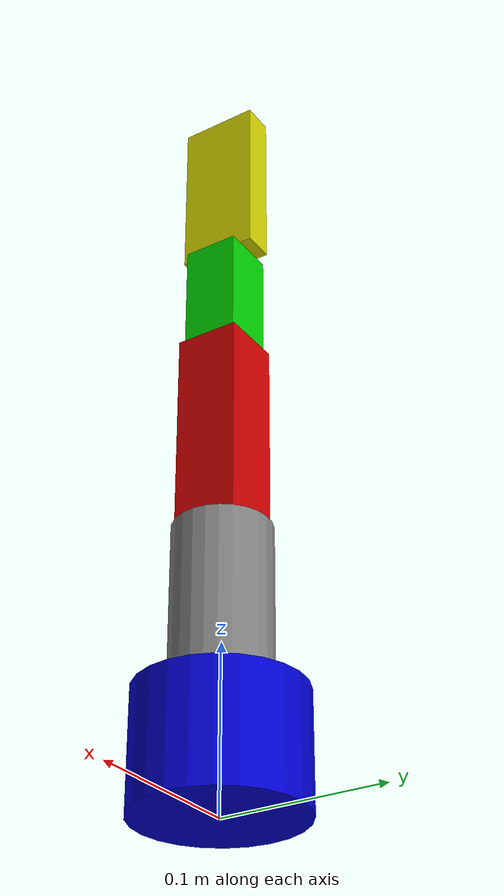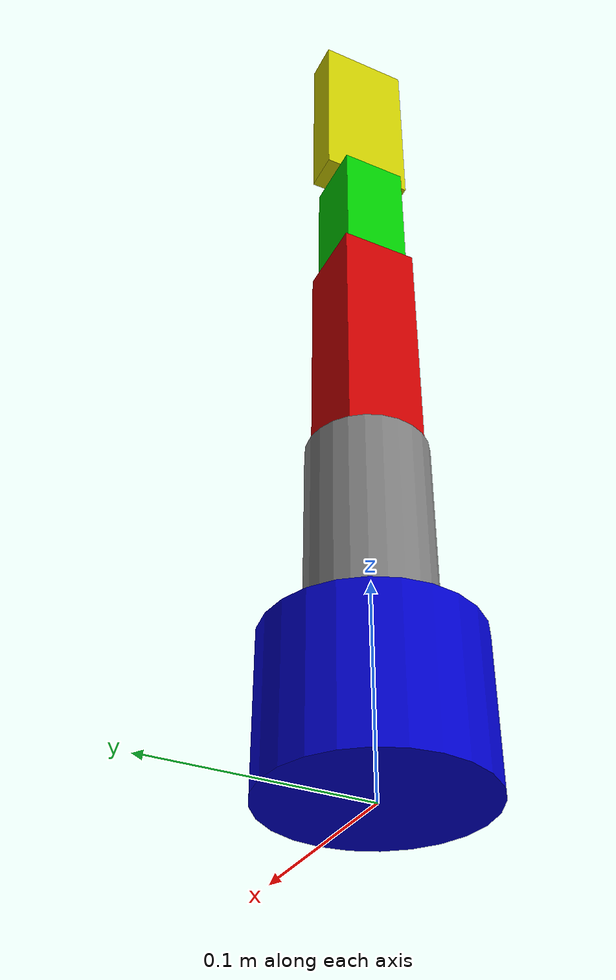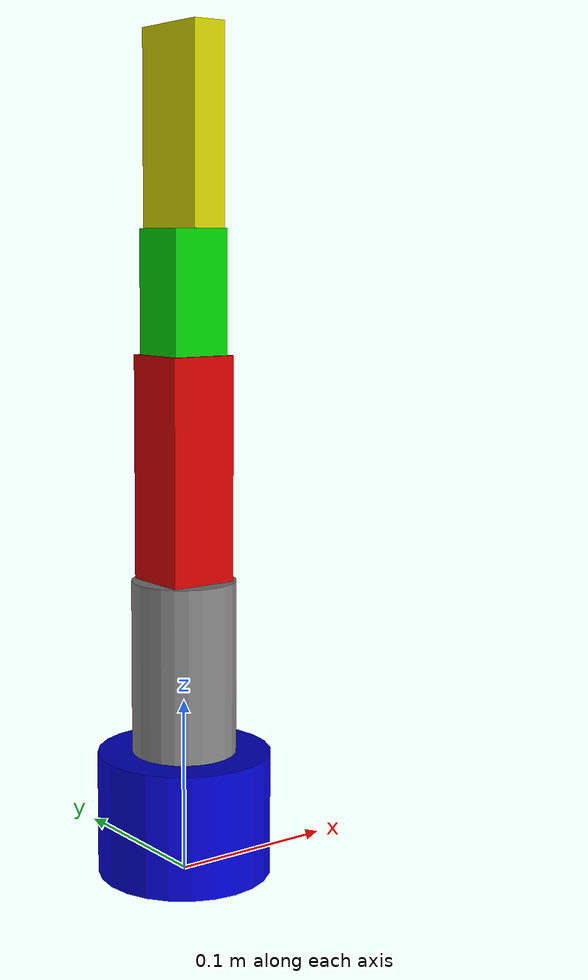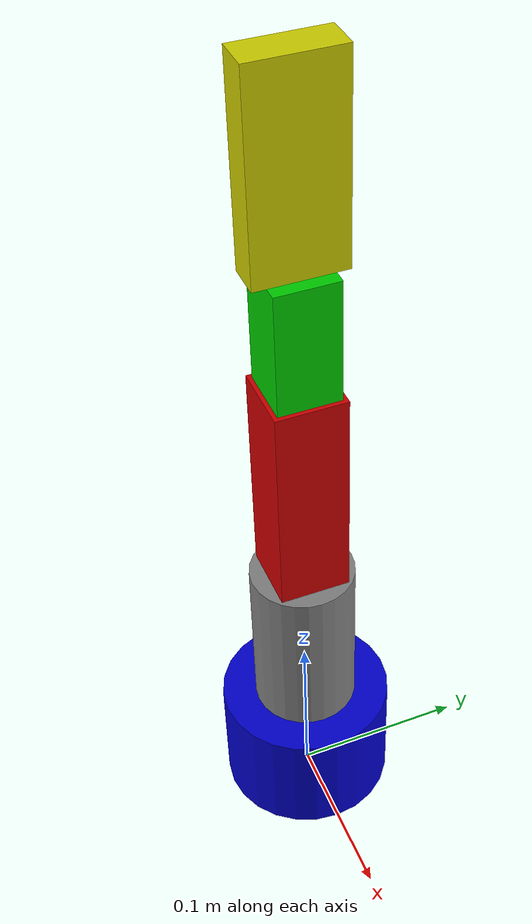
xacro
<?xml version="1.0"?>
<robot xmlns:xacro="http://www.ros.org/wiki/xacro" name="my_robot_arm">

  <!-- Dummy root link to fix KDL inertia warning -->
  <link name="world"/>

  <joint name="world_fixed" type="fixed">
    <parent link="world"/>
    <child link="base_link"/>
    <origin xyz="0 0 0" rpy="0 0 0"/>
  </joint>

  <!-- Base Link (Height: 0.071 m = 7.1 cm) -->
  <link name="base_link">
    <visual>
      <origin xyz="0 0 0.0355" rpy="0 0 0"/>
      <geometry>
        <cylinder radius="0.05" length="0.071"/>
      </geometry>
      <material name="blue">
        <color rgba="0 0 0.8 1"/>
      </material>
    </visual>
    <collision>
      <origin xyz="0 0 0.0355" rpy="0 0 0"/>
      <geometry>
        <cylinder radius="0.05" length="0.071"/>
      </geometry>
    </collision>
    <inertial>
      <mass value="0.5"/>
      <origin xyz="0 0 0.0355" rpy="0 0 0"/>
      <inertia ixx="0.001" ixy="0" ixz="0" iyy="0.001" iyz="0" izz="0.001"/>
    </inertial>
  </link>

  <!-- Joint 1: Base to L1 (Revolute - Base Rotation) -->
  <joint name="joint1" type="revolute">
    <parent link="base_link"/>
    <child link="L1"/>
    <origin xyz="0 0 0.071" rpy="0 0 0"/>
    <axis xyz="0 0 1"/>
    <limit lower="-3.14" upper="3.14" effort="10.0" velocity="1.0"/>
  </joint>

  <!-- L1 Link (Height: 0.10 m = 10 cm) -->
  <link name="L1">
    <visual>
      <origin xyz="0 0 0.05" rpy="0 0 0"/>
      <geometry>
        <cylinder radius="0.03" length="0.10"/>
      </geometry>
      <material name="grey">
        <color rgba="0.5 0.5 0.5 1"/>
      </material>
    </visual>
    <collision>
      <origin xyz="0 0 0.05" rpy="0 0 0"/>
      <geometry>
        <cylinder radius="0.03" length="0.10"/>
      </geometry>
    </collision>
    <inertial>
      <mass value="0.3"/>
      <origin xyz="0 0 0.05" rpy="0 0 0"/>
      <inertia ixx="0.0005" ixy="0" ixz="0" iyy="0.0005" iyz="0" izz="0.0005"/>
    </inertial>
  </link>

  <!-- Joint 2: L1 to L2 (Revolute) -->
  <joint name="joint2" type="revolute">
    <parent link="L1"/>
    <child link="L2"/>
    <origin xyz="0 0 0.10" rpy="0 0 0"/>
    <axis xyz="0 1 0"/>
    <limit lower="-1.57" upper="1.57" effort="10.0" velocity="1.0"/>
  </joint>

  <!-- L2 Link (Length: 0.128 m = 12.8 cm) -->
  <link name="L2">
    <visual>
      <origin xyz="0 0 0.064" rpy="0 0 0"/>
      <geometry>
        <box size="0.04 0.04 0.128"/>
      </geometry>
      <material name="red">
        <color rgba="0.8 0 0 1"/>
      </material>
    </visual>
    <collision>
      <origin xyz="0 0 0.064" rpy="0 0 0"/>
      <geometry>
        <box size="0.04 0.04 0.128"/>
      </geometry>
    </collision>
    <inertial>
      <mass value="0.25"/>
      <origin xyz="0 0 0.064" rpy="0 0 0"/>
      <inertia ixx="0.0004" ixy="0" ixz="0" iyy="0.0004" iyz="0" izz="0.0004"/>
    </inertial>
  </link>

  <!-- Joint 3: L2 to L3 (Revolute) -->
  <joint name="joint3" type="revolute">
    <parent link="L2"/>
    <child link="L3"/>
    <origin xyz="0 0 0.128" rpy="0 0 0"/>
    <axis xyz="0 1 0"/>
    <limit lower="-1.57" upper="1.57" effort="10.0" velocity="1.0"/>
  </joint>

  <!-- L3 Link (Length: 0.07 m = 7 cm) -->
  <link name="L3">
    <visual>
      <origin xyz="0 0 0.035" rpy="0 0 0"/>
      <geometry>
        <box size="0.035 0.035 0.07"/>
      </geometry>
      <material name="green">
        <color rgba="0 0.8 0 1"/>
      </material>
    </visual>
    <collision>
      <origin xyz="0 0 0.035" rpy="0 0 0"/>
      <geometry>
        <box size="0.035 0.035 0.07"/>
      </geometry>
    </collision>
    <inertial>
      <mass value="0.2"/>
      <origin xyz="0 0 0.035" rpy="0 0 0"/>
      <inertia ixx="0.0002" ixy="0" ixz="0" iyy="0.0002" iyz="0" izz="0.0002"/>
    </inertial>
  </link>

  <!-- Joint 4: L3 to End Effector / Gripper (Revolute) -->
  <joint name="joint4" type="revolute">
    <parent link="L3"/>
    <child link="end_effector"/>
    <origin xyz="0 0 0.07" rpy="0 0 0"/>
    <axis xyz="0 1 0"/>
    <limit lower="-1.57" upper="1.57" effort="10.0" velocity="1.0"/>
  </joint>

  <!-- End Effector Link (Length: 0.11 m = 11 cm) -->
  <link name="end_effector">
    <visual>
      <origin xyz="0 0 0.055" rpy="0 0 0"/>
      <geometry>
        <box size="0.02 0.05 0.11"/>
      </geometry>
      <material name="yellow">
        <color rgba="0.8 0.8 0 1"/>
      </material>
    </visual>
    <collision>
      <origin xyz="0 0 0.055" rpy="0 0 0"/>
      <geometry>
        <box size="0.02 0.05 0.11"/>
      </geometry>
    </collision>
    <inertial>
      <mass value="0.15"/>
      <origin xyz="0 0 0.055" rpy="0 0 0"/>
      <inertia ixx="0.0001" ixy="0" ixz="0" iyy="0.0001" iyz="0" izz="0.0001"/>
    </inertial>
  </link>

</robot>
